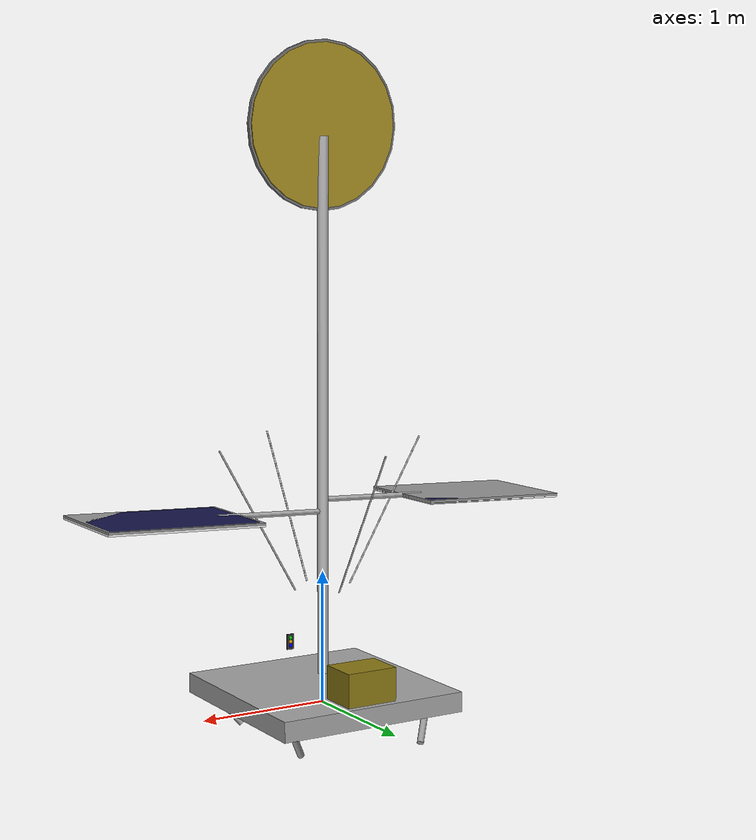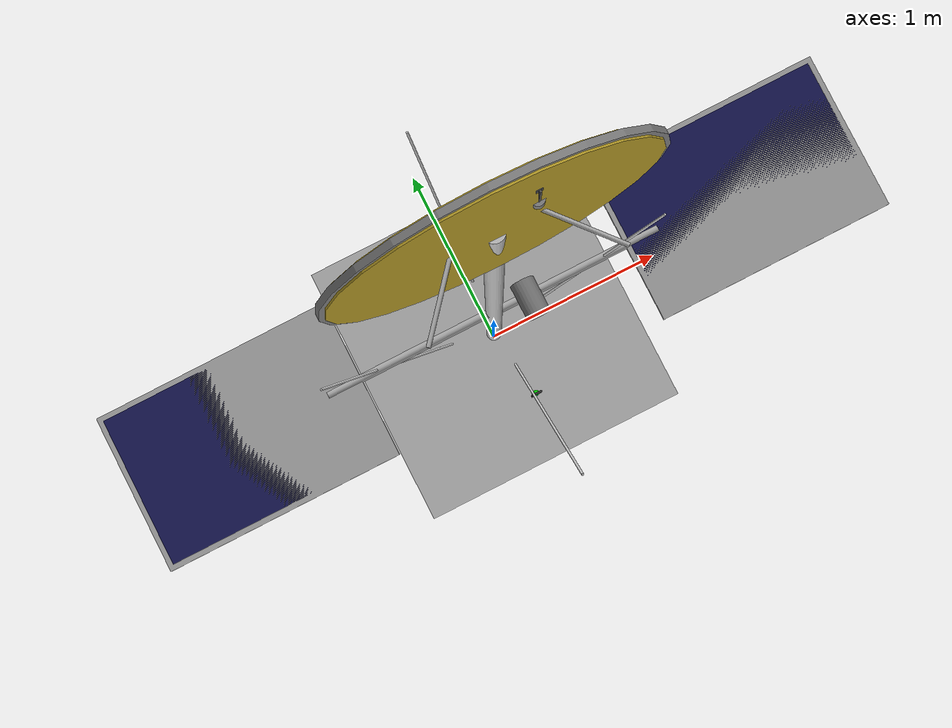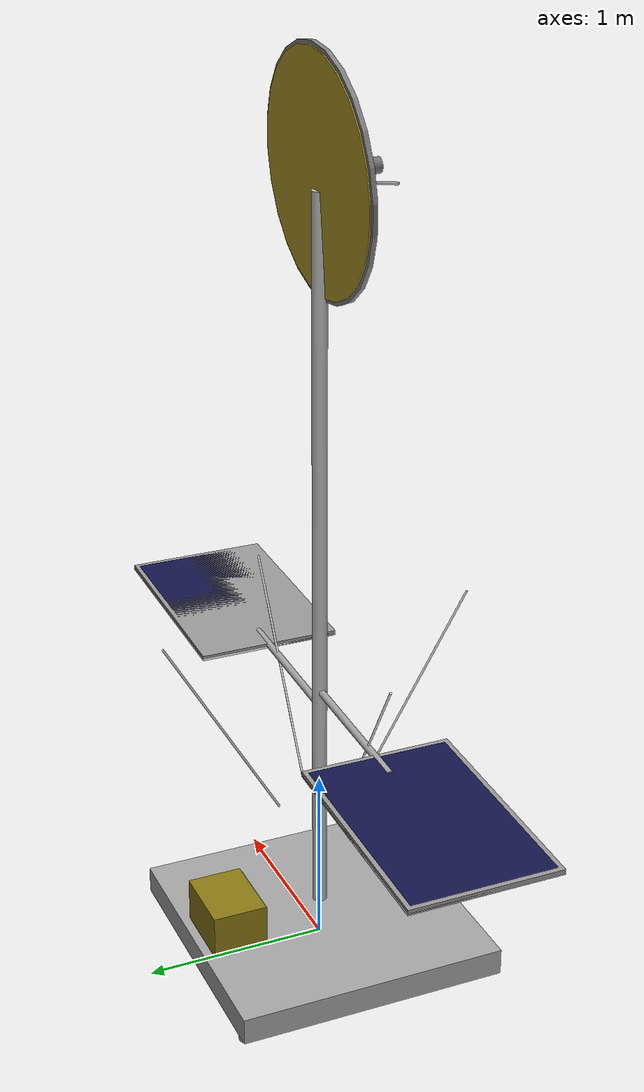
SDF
<?xml version="1.0" ?>
<sdf version="1.9">
  <model name="comms_relay_station">

    <static>true</static>

    <link name="base_link">
      <pose>0 0 0.075 0 0 0</pose>

      <inertial>
        <mass>25.0</mass>
        <inertia>
          <ixx>4.6875</ixx>   <!-- (1/12)*m*(h^2+d^2): box approx -->
          <ixy>0</ixy>
          <ixz>0</ixz>
          <iyy>4.6875</iyy>
          <iyz>0</iyz>
          <izz>9.375</izz>
        </inertia>
      </inertial>

      <collision name="base_collision">
        <geometry>
          <box>
            <size>1.5 1.5 0.15</size>
          </box>
        </geometry>
        <surface>
          <friction>
            <ode>
              <!-- Very high friction: anchored to regolith surface -->
              <mu>2.0</mu>
              <mu2>2.0</mu2>
            </ode>
          </friction>
          <contact>
            <ode>
              <kp>1e8</kp>
              <kd>1000</kd>
            </ode>
          </contact>
        </surface>
      </collision>

      <visual name="base_visual">
        <geometry>
          <box>
            <size>1.5 1.5 0.15</size>
          </box>
        </geometry>
        <material>
          <!-- Structural aluminum: silver-grey with some oxidation -->
          <ambient>0.45 0.45 0.45 1</ambient>
          <diffuse>0.65 0.65 0.65 1</diffuse>
          <specular>0.30 0.30 0.30 1</specular>
        </material>
      </visual>

      <!-- Base anchor legs (4 diagonal legs at corners) -->
      <visual name="leg_NE">
        <pose>0.55 0.55 -0.15 0 0.7854 0.7854</pose>
        <geometry><cylinder><radius>0.025</radius><length>0.4</length></cylinder></geometry>
        <material>
          <ambient>0.40 0.40 0.40 1</ambient>
          <diffuse>0.60 0.60 0.60 1</diffuse>
          <specular>0.25 0.25 0.25 1</specular>
        </material>
      </visual>

      <visual name="leg_NW">
        <pose>-0.55 0.55 -0.15 0 -0.7854 0.7854</pose>
        <geometry><cylinder><radius>0.025</radius><length>0.4</length></cylinder></geometry>
        <material>
          <ambient>0.40 0.40 0.40 1</ambient>
          <diffuse>0.60 0.60 0.60 1</diffuse>
          <specular>0.25 0.25 0.25 1</specular>
        </material>
      </visual>

      <visual name="leg_SE">
        <pose>0.55 -0.55 -0.15 0 0.7854 -0.7854</pose>
        <geometry><cylinder><radius>0.025</radius><length>0.4</length></cylinder></geometry>
        <material>
          <ambient>0.40 0.40 0.40 1</ambient>
          <diffuse>0.60 0.60 0.60 1</diffuse>
          <specular>0.25 0.25 0.25 1</specular>
        </material>
      </visual>

      <visual name="leg_SW">
        <pose>-0.55 -0.55 -0.15 0 -0.7854 -0.7854</pose>
        <geometry><cylinder><radius>0.025</radius><length>0.4</length></cylinder></geometry>
        <material>
          <ambient>0.40 0.40 0.40 1</ambient>
          <diffuse>0.60 0.60 0.60 1</diffuse>
          <specular>0.25 0.25 0.25 1</specular>
        </material>
      </visual>
    </link>

    <link name="mast_link">
      <pose>0 0 2.225 0 0 0</pose>  <!-- base_h/2 + 0.15 + mast_h/2 = 0.075+0.15+2.0 -->

      <inertial>
        <mass>3.5</mass>
        <inertia>
          <ixx>4.667</ixx>   <!-- (1/12)*m*L^2 for slender rod: (1/12)*3.5*16 -->
          <ixy>0</ixy>
          <ixz>0</ixz>
          <iyy>4.667</iyy>
          <iyz>0</iyz>
          <izz>0.0028</izz>
        </inertia>
      </inertial>

      <collision name="mast_collision">
        <geometry>
          <cylinder>
            <radius>0.040</radius>
            <length>4.0</length>
          </cylinder>
        </geometry>
      </collision>

      <visual name="mast_visual">
        <geometry>
          <cylinder>
            <radius>0.040</radius>
            <length>4.0</length>
          </cylinder>
        </geometry>
        <material>
          <ambient>0.50 0.50 0.50 1</ambient>
          <diffuse>0.75 0.75 0.75 1</diffuse>
          <specular>0.40 0.40 0.40 1</specular>
        </material>
      </visual>

      <!-- Cable braces (visual only, 4 diagonal braces from mast to base) -->
      <visual name="brace_N">
        <pose>0.0 0.55 -0.8 -0.5236 0 0</pose>
        <geometry><cylinder><radius>0.006</radius><length>1.25</length></cylinder></geometry>
        <material>
          <ambient>0.6 0.6 0.6 1</ambient>
          <diffuse>0.8 0.8 0.8 1</diffuse>
          <specular>0.2 0.2 0.2 1</specular>
        </material>
      </visual>

      <visual name="brace_S">
        <pose>0.0 -0.55 -0.8 0.5236 0 0</pose>
        <geometry><cylinder><radius>0.006</radius><length>1.25</length></cylinder></geometry>
        <material>
          <ambient>0.6 0.6 0.6 1</ambient>
          <diffuse>0.8 0.8 0.8 1</diffuse>
          <specular>0.2 0.2 0.2 1</specular>
        </material>
      </visual>

      <visual name="brace_E">
        <pose>0.55 0.0 -0.8 0 0.5236 0</pose>
        <geometry><cylinder><radius>0.006</radius><length>1.25</length></cylinder></geometry>
        <material>
          <ambient>0.6 0.6 0.6 1</ambient>
          <diffuse>0.8 0.8 0.8 1</diffuse>
          <specular>0.2 0.2 0.2 1</specular>
        </material>
      </visual>

      <visual name="brace_W">
        <pose>-0.55 0.0 -0.8 0 -0.5236 0</pose>
        <geometry><cylinder><radius>0.006</radius><length>1.25</length></cylinder></geometry>
        <material>
          <ambient>0.6 0.6 0.6 1</ambient>
          <diffuse>0.8 0.8 0.8 1</diffuse>
          <specular>0.2 0.2 0.2 1</specular>
        </material>
      </visual>
    </link>

    <link name="hga_dish_link">
      <!-- Positioned at top of mast, tilted toward Earth direction -->
      <!-- Earth elevation ~2-5° above horizon, azimuth ~180° (south) -->
      <!-- Dish normal points toward Earth: pitch = -(90° - 3°) = -87° from zenith -->
      <pose>0 0 4.3 -1.518 0 3.14159</pose>  <!-- ≈ 87° tilt south -->

      <inertial>
        <mass>4.5</mass>
        <inertia>
          <ixx>0.810</ixx>   <!-- disk: (1/4)*m*r^2 + (1/12)*m*h^2 -->
          <ixy>0</ixy>
          <ixz>0</ixz>
          <iyy>0.810</iyy>
          <iyz>0</iyz>
          <izz>1.620</izz>
        </inertia>
      </inertial>

      <collision name="dish_collision">
        <geometry>
          <cylinder>
            <!-- Shallow cylinder approximates the dish reflector -->
            <radius>0.60</radius>
            <length>0.08</length>
          </cylinder>
        </geometry>
      </collision>

      <!-- Dish reflector surface -->
      <visual name="dish_reflector">
        <geometry>
          <cylinder>
            <radius>0.60</radius>
            <length>0.04</length>
          </cylinder>
        </geometry>
        <material>
          <!-- Gold-colored CFRP reflector with metallic sheen -->
          <ambient>0.55 0.48 0.10 1</ambient>
          <diffuse>0.70 0.60 0.15 1</diffuse>
          <specular>0.80 0.75 0.30 1</specular>
        </material>
      </visual>

      <!-- Dish rim ring -->
      <visual name="dish_rim">
        <pose>0 0 0 0 0 0</pose>
        <geometry>
          <cylinder>
            <radius>0.62</radius>
            <length>0.025</length>
          </cylinder>
        </geometry>
        <material>
          <ambient>0.35 0.35 0.35 1</ambient>
          <diffuse>0.50 0.50 0.50 1</diffuse>
          <specular>0.40 0.40 0.40 1</specular>
        </material>
      </visual>

      <!-- Feed horn at focal point (0.25m from dish center) -->
      <visual name="feed_horn">
        <pose>0 0 0.25 0 0 0</pose>
        <geometry>
          <cylinder>
            <radius>0.04</radius>
            <length>0.12</length>
          </cylinder>
        </geometry>
        <material>
          <ambient>0.30 0.30 0.30 1</ambient>
          <diffuse>0.45 0.45 0.45 1</diffuse>
          <specular>0.35 0.35 0.35 1</specular>
        </material>
      </visual>

      <!-- Feed support struts (4x) -->
      <visual name="strut_1">
        <pose>0.25 0 0.12 0 0.7 0</pose>
        <geometry><cylinder><radius>0.008</radius><length>0.32</length></cylinder></geometry>
        <material>
          <ambient>0.45 0.45 0.45 1</ambient>
          <diffuse>0.65 0.65 0.65 1</diffuse>
          <specular>0.30 0.30 0.30 1</specular>
        </material>
      </visual>

      <visual name="strut_2">
        <pose>-0.25 0 0.12 0 -0.7 0</pose>
        <geometry><cylinder><radius>0.008</radius><length>0.32</length></cylinder></geometry>
        <material>
          <ambient>0.45 0.45 0.45 1</ambient>
          <diffuse>0.65 0.65 0.65 1</diffuse>
          <specular>0.30 0.30 0.30 1</specular>
        </material>
      </visual>
    </link>

    <link name="solar_panel_east">
      <!-- Horizontal arm extends 1.0m east from mast, panels face up/north -->
      <pose>1.3 0 1.5 0 -0.0349 0</pose>  <!-- 2° tilt toward sun -->

      <inertial>
        <mass>8.0</mass>
        <inertia>
          <ixx>0.427</ixx>
          <ixy>0</ixy>
          <ixz>0</ixz>
          <iyy>1.413</iyy>
          <iyz>0</iyz>
          <izz>1.840</izz>
        </inertia>
      </inertial>

      <collision name="panel_collision">
        <geometry>
          <box><size>1.2 0.80 0.025</size></box>
        </geometry>
      </collision>

      <!-- Solar cell face (pointing upward / toward sun) -->
      <visual name="cells_top">
        <pose>0 0 0.01 0 0 0</pose>
        <geometry><box><size>1.15 0.75 0.005</size></box></geometry>
        <material>
          <!-- Deep navy/dark blue: GaAs solar cell appearance -->
          <ambient>0.05 0.05 0.20 1</ambient>
          <diffuse>0.08 0.08 0.30 1</diffuse>
          <specular>0.20 0.20 0.40 1</specular>
        </material>
      </visual>

      <!-- Panel substrate (back face, white) -->
      <visual name="substrate_back">
        <pose>0 0 -0.01 0 0 0</pose>
        <geometry><box><size>1.2 0.80 0.015</size></box></geometry>
        <material>
          <ambient>0.85 0.85 0.85 1</ambient>
          <diffuse>0.95 0.95 0.95 1</diffuse>
          <specular>0.10 0.10 0.10 1</specular>
        </material>
      </visual>

      <!-- Panel frame (aluminum edge) -->
      <visual name="panel_frame">
        <geometry><box><size>1.2 0.80 0.025</size></box></geometry>
        <material>
          <ambient>0.40 0.40 0.40 1</ambient>
          <diffuse>0.60 0.60 0.60 1</diffuse>
          <specular>0.35 0.35 0.35 1</specular>
        </material>
      </visual>

      <!-- Arm connecting to mast -->
      <visual name="arm_east">
        <pose>-0.85 0 0 0 1.5708 0</pose>
        <geometry><cylinder><radius>0.02</radius><length>0.85</length></cylinder></geometry>
        <material>
          <ambient>0.45 0.45 0.45 1</ambient>
          <diffuse>0.65 0.65 0.65 1</diffuse>
          <specular>0.30 0.30 0.30 1</specular>
        </material>
      </visual>
    </link>

    <link name="solar_panel_west">
      <pose>-1.3 0 1.5 0 -0.0349 0</pose>

      <inertial>
        <mass>8.0</mass>
        <inertia>
          <ixx>0.427</ixx><ixy>0</ixy><ixz>0</ixz>
          <iyy>1.413</iyy><iyz>0</iyz>
          <izz>1.840</izz>
        </inertia>
      </inertial>

      <collision name="panel_collision">
        <geometry><box><size>1.2 0.80 0.025</size></box></geometry>
      </collision>

      <visual name="cells_top">
        <pose>0 0 0.01 0 0 0</pose>
        <geometry><box><size>1.15 0.75 0.005</size></box></geometry>
        <material>
          <ambient>0.05 0.05 0.20 1</ambient>
          <diffuse>0.08 0.08 0.30 1</diffuse>
          <specular>0.20 0.20 0.40 1</specular>
        </material>
      </visual>

      <visual name="substrate_back">
        <pose>0 0 -0.01 0 0 0</pose>
        <geometry><box><size>1.2 0.80 0.015</size></box></geometry>
        <material>
          <ambient>0.85 0.85 0.85 1</ambient>
          <diffuse>0.95 0.95 0.95 1</diffuse>
          <specular>0.10 0.10 0.10 1</specular>
        </material>
      </visual>

      <visual name="panel_frame">
        <geometry><box><size>1.2 0.80 0.025</size></box></geometry>
        <material>
          <ambient>0.40 0.40 0.40 1</ambient>
          <diffuse>0.60 0.60 0.60 1</diffuse>
          <specular>0.35 0.35 0.35 1</specular>
        </material>
      </visual>

      <visual name="arm_west">
        <pose>0.85 0 0 0 1.5708 0</pose>
        <geometry><cylinder><radius>0.02</radius><length>0.85</length></cylinder></geometry>
        <material>
          <ambient>0.45 0.45 0.45 1</ambient>
          <diffuse>0.65 0.65 0.65 1</diffuse>
          <specular>0.30 0.30 0.30 1</specular>
        </material>
      </visual>
    </link>

    <link name="electronics_box">
      <pose>0 0.55 0.275 0 0 0</pose>

      <inertial>
        <mass>15.0</mass>
        <inertia>
          <ixx>0.179</ixx><ixy>0</ixy><ixz>0</ixz>
          <iyy>0.261</iyy><iyz>0</iyz>
          <izz>0.188</izz>
        </inertia>
      </inertial>

      <collision name="box_collision">
        <geometry><box><size>0.40 0.30 0.25</size></box></geometry>
      </collision>

      <!-- Box body: MLI-covered (gold) -->
      <visual name="box_body">
        <geometry><box><size>0.40 0.30 0.25</size></box></geometry>
        <material>
          <ambient>0.40 0.35 0.05 1</ambient>
          <diffuse>0.55 0.48 0.08 1</diffuse>
          <specular>0.60 0.55 0.15 1</specular>
        </material>
      </visual>

      <!-- Radiator panel on one face (black) -->
      <visual name="radiator">
        <pose>0 -0.155 0 0 0 0</pose>
        <geometry><box><size>0.38 0.005 0.23</size></box></geometry>
        <material>
          <ambient>0.02 0.02 0.02 1</ambient>
          <diffuse>0.03 0.03 0.03 1</diffuse>
          <specular>0.01 0.01 0.01 1</specular>
        </material>
      </visual>
    </link>

    <link name="status_leds">
      <pose>0.05 -0.40 0.35 0 0 0</pose>

      <inertial>
        <mass>0.05</mass>
        <inertia>
          <ixx>1e-5</ixx><ixy>0</ixy><ixz>0</ixz>
          <iyy>1e-5</iyy><iyz>0</iyz>
          <izz>1e-5</izz>
        </inertia>
      </inertial>

      <!-- Green LED: system nominal -->
      <visual name="led_green">
        <pose>0 0 0.06 0 0 0</pose>
        <geometry><sphere><radius>0.015</radius></sphere></geometry>
        <material>
          <ambient>0.0 0.5 0.0 1</ambient>
          <diffuse>0.0 0.8 0.0 1</diffuse>
          <specular>0.0 0.2 0.0 1</specular>
          <!-- Emissive: LED glows in darkness -->
          <emissive>0.0 0.6 0.0 1</emissive>
        </material>
      </visual>

      <!-- Amber LED: charging/power status -->
      <visual name="led_amber">
        <pose>0 0 0.03 0 0 0</pose>
        <geometry><sphere><radius>0.015</radius></sphere></geometry>
        <material>
          <ambient>0.6 0.4 0.0 1</ambient>
          <diffuse>0.9 0.6 0.0 1</diffuse>
          <specular>0.2 0.1 0.0 1</specular>
          <emissive>0.7 0.45 0.0 1</emissive>
        </material>
      </visual>

      <!-- Blue LED: active communication link -->
      <visual name="led_blue">
        <pose>0 0 0.0 0 0 0</pose>
        <geometry><sphere><radius>0.015</radius></sphere></geometry>
        <material>
          <ambient>0.0 0.0 0.6 1</ambient>
          <diffuse>0.0 0.0 0.9 1</diffuse>
          <specular>0.0 0.0 0.2 1</specular>
          <emissive>0.0 0.1 0.9 1</emissive>
        </material>
      </visual>

      <!-- LED housing panel -->
      <visual name="led_panel">
        <pose>0 -0.005 0.03 0 0 0</pose>
        <geometry><box><size>0.06 0.01 0.12</size></box></geometry>
        <material>
          <ambient>0.15 0.15 0.15 1</ambient>
          <diffuse>0.20 0.20 0.20 1</diffuse>
          <specular>0.05 0.05 0.05 1</specular>
        </material>
      </visual>
    </link>

    <link name="lga_antenna">
      <pose>0.15 0 4.5 0 0 0</pose>

      <inertial>
        <mass>0.3</mass>
        <inertia>
          <ixx>0.00225</ixx><ixy>0</ixy><ixz>0</ixz>
          <iyy>0.00225</iyy><iyz>0</iyz>
          <izz>0.000038</izz>
        </inertia>
      </inertial>

      <!-- UHF blade antenna -->
      <visual name="blade">
        <geometry><box><size>0.025 0.008 0.30</size></box></geometry>
        <material>
          <ambient>0.20 0.20 0.20 1</ambient>
          <diffuse>0.30 0.30 0.30 1</diffuse>
          <specular>0.15 0.15 0.15 1</specular>
        </material>
      </visual>

      <!-- Second blade perpendicular -->
      <visual name="blade_2">
        <pose>0 0 0 0 0 1.5708</pose>
        <geometry><box><size>0.025 0.008 0.30</size></box></geometry>
        <material>
          <ambient>0.20 0.20 0.20 1</ambient>
          <diffuse>0.30 0.30 0.30 1</diffuse>
          <specular>0.15 0.15 0.15 1</specular>
        </material>
      </visual>

      <!-- Antenna base fitting -->
      <visual name="base_fitting">
        <pose>0 0 -0.06 0 0 0</pose>
        <geometry><cylinder><radius>0.025</radius><length>0.06</length></cylinder></geometry>
        <material>
          <ambient>0.35 0.35 0.35 1</ambient>
          <diffuse>0.50 0.50 0.50 1</diffuse>
          <specular>0.25 0.25 0.25 1</specular>
        </material>
      </visual>
    </link>

  </model>
</sdf>
